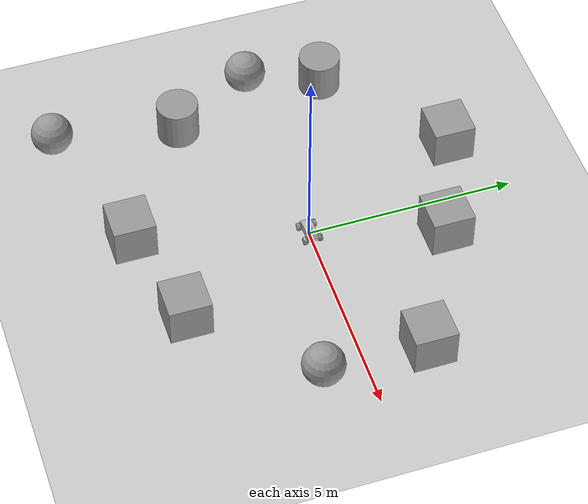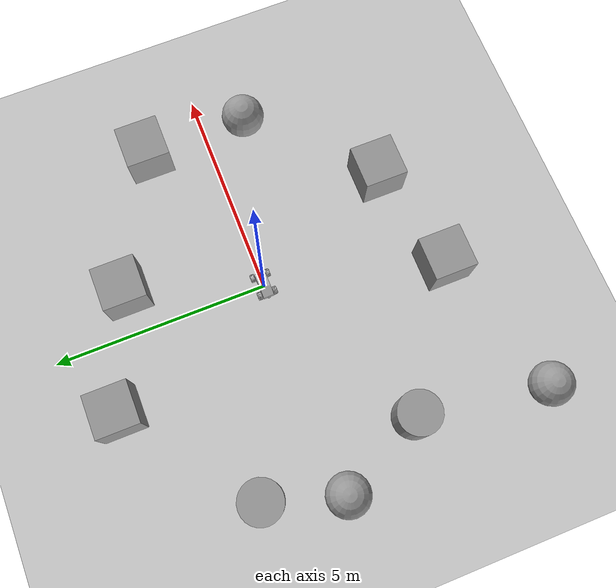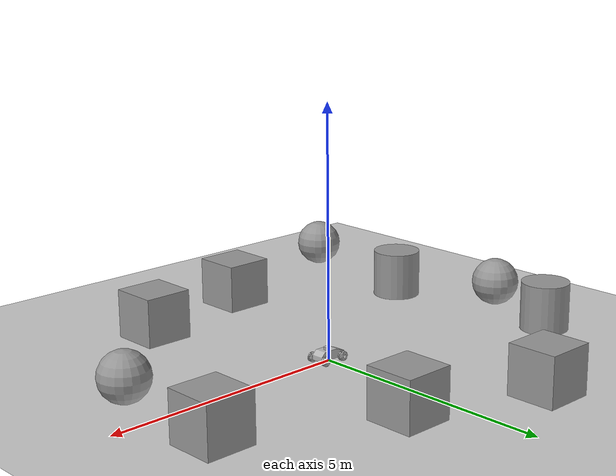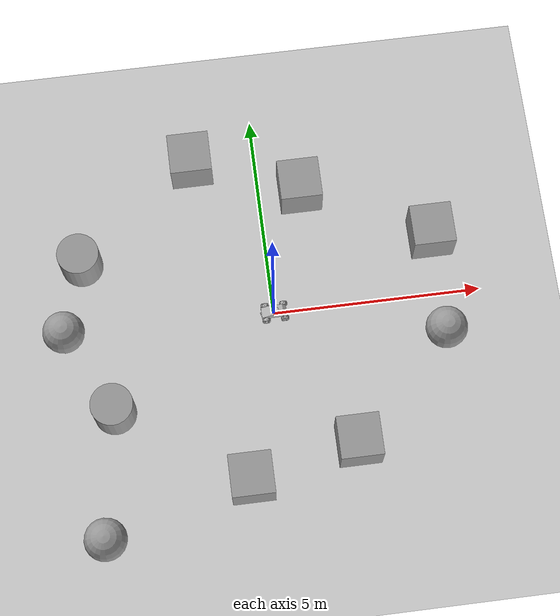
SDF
<sdf version="1.7">
 <world name="default">
  <light name="sun" type="directional">
   <pose>0 0 10 0 -0 0</pose>
   <diffuse>0.8 0.8 0.8 1</diffuse>
   <specular>0.2 0.2 0.2 1</specular>
   <attenuation>
    <range>1000</range>
    <constant>0.9</constant>
    <linear>0.01</linear>
    <quadratic>0.001</quadratic>
   </attenuation>
   <direction>-0.5 0.1 -0.9</direction>
   <spot><inner_angle>0</inner_angle><outer_angle>0</outer_angle><falloff>0</falloff></spot>
  </light>
  <model name="ground_plane">
   <static>1</static>
   <link name="link">
    <collision name="collision">
     <geometry><plane><normal>0 0 1</normal><size>100 100</size></plane></geometry>
     <surface>
      <contact><collide_bitmask>65535</collide_bitmask></contact>
      <friction><ode><mu>100</mu><mu2>50</mu2></ode></friction>
     </surface>
    </collision>
    <visual name="visual">
     <cast_shadows>0</cast_shadows>
     <geometry><plane><normal>0 0 1</normal><size>100 100</size></plane></geometry>
     <material>
      <script><uri>file://media/materials/scripts/gazebo.material</uri><name>Gazebo/Grey</name></script>
     </material>
    </visual>
   </link>
  </model>
  <gravity>0 0 -9.8</gravity>
  <magnetic_field>6e-06 2.3e-05 -4.2e-05</magnetic_field>
  <atmosphere type="adiabatic"/>
  <physics type="ode">
   <max_step_size>0.001</max_step_size>
   <real_time_factor>1</real_time_factor>
   <real_time_update_rate>1000</real_time_update_rate>
  </physics>
  <scene><ambient>0.4 0.4 0.4 1</ambient><background>0.7 0.7 0.7 1</background><shadows>1</shadows></scene>
  <audio><device>default</device></audio>
  <spherical_coordinates>
   <surface_model>EARTH_WGS84</surface_model>
   <latitude_deg>0</latitude_deg>
   <longitude_deg>0</longitude_deg>
   <elevation>0</elevation>
   <heading_deg>0</heading_deg>
  </spherical_coordinates>
  <model name="my_car">
   <link name="base_link">
    <inertial>
     <pose>0.005986 -0 0.085321 0 -0 0</pose>
     <mass>25.4221</mass>
     <inertia>
      <ixx>0.388088</ixx>
      <ixy>0.000810797</ixy>
      <ixz>-0.00813607</ixz>
      <iyy>1.45514</iyy>
      <iyz>-3.03419e-05</iyz>
      <izz>1.57857</izz>
     </inertia>
    </inertial>
    <collision name="base_link_fixed_joint_lump__chassis_link_collision">
     <geometry>
      <mesh>
       <scale>1 1 1</scale>
       <uri>file:///home/pacman/Documents/my_ros2_ws/install/gazebo_spawner_test/share/gazebo_spawner_test/meshes/chassis_link.STL</uri>
      </mesh>
     </geometry>
    </collision>
    <collision name="base_link_fixed_joint_lump__camera_link_collision_1">
     <pose>-0.3 0 0.05 0 -0 3.14</pose>
     <geometry><box><size>0.05 0.05 0.05</size></box></geometry>
    </collision>
    <collision name="base_link_fixed_joint_lump__lidar_link_collision_2">
     <pose>0.065294 0 0.18471 0 -0 0</pose>
     <geometry>
      <mesh>
       <scale>1 1 1</scale>
       <uri>file:///home/pacman/Documents/my_ros2_ws/install/gazebo_spawner_test/share/gazebo_spawner_test/meshes/lidar_link.STL</uri>
      </mesh>
     </geometry>
    </collision>
    <visual name="base_link_fixed_joint_lump__chassis_link_visual">
     <geometry>
      <mesh>
       <scale>1 1 1</scale>
       <uri>file:///home/pacman/Documents/my_ros2_ws/install/gazebo_spawner_test/share/gazebo_spawner_test/meshes/chassis_link.STL</uri>
      </mesh>
     </geometry>
    </visual>
    <visual name="base_link_fixed_joint_lump__camera_link_visual_1">
     <pose>-0.3 0 0.05 0 -0 3.14</pose>
     <geometry><box><size>0.05 0.05 0.05</size></box></geometry>
    </visual>
    <visual name="base_link_fixed_joint_lump__lidar_link_visual_2">
     <pose>0.065294 0 0.18471 0 -0 0</pose>
     <geometry>
      <mesh>
       <scale>1 1 1</scale>
       <uri>file:///home/pacman/Documents/my_ros2_ws/install/gazebo_spawner_test/share/gazebo_spawner_test/meshes/lidar_link.STL</uri>
      </mesh>
     </geometry>
    </visual>
    <sensor name="camera1" type="depth">
     <update_rate>30</update_rate>
     <visualize>1</visualize>
     <camera name="head">
      <horizontal_fov>1.39626</horizontal_fov>
      <image><width>800</width><height>800</height><format>R8G8B8</format></image>
      <clip><near>0.02</near><far>300</far></clip>
      <noise><type>gaussian</type><mean>0</mean><stddev>0.007</stddev></noise>
     </camera>
     <plugin name="depth_camera_controller" filename="libgazebo_ros_camera.so">
      <alwaysOn>1</alwaysOn>
      <updateRate>0.0</updateRate>
      <cameraName>rrbot/camera1</cameraName>
      <depthImageTopicName>image_raw</depthImageTopicName>
      <cameraInfoTopicName>camera_info</cameraInfoTopicName>
      <pointCloudTopicName>points</pointCloudTopicName>
      <frame_name>camera_virtual_link</frame_name>
      <hackBaseline>0.07</hackBaseline>
      <distortionK1>0.0</distortionK1>
      <distortionK2>0.0</distortionK2>
      <distortionK3>0.0</distortionK3>
      <distortionT1>0.0</distortionT1>
      <distortionT2>0.0</distortionT2>
     </plugin>
     <pose>-0.3 0 0.05 0 -0 3.14</pose>
    </sensor>
    <sensor name="laser" type="ray">
     <visualize>1</visualize>
     <update_rate>10</update_rate>
     <ray>
      <scan>
       <horizontal>
        <samples>360</samples>
        <min_angle>-3.14</min_angle>
        <max_angle>3.14</max_angle>
        <resolution>1</resolution>
       </horizontal>
       <vertical><samples>1</samples><min_angle>0</min_angle><max_angle>0</max_angle></vertical>
      </scan>
      <range><min>0.2</min><max>5</max></range>
     </ray>
     <plugin name="laser_controller" filename="libgazebo_ros_ray_sensor.so">
      <ros><argument>~/out:=scan</argument></ros>
      <output_type>sensor_msgs/LaserScan</output_type>
      <frame_name>lidar_link</frame_name>
     </plugin>
     <pose>0.065294 0 0.18471 0 -0 0</pose>
    </sensor>
   </link>
   <joint name="back_left_wheel_joint" type="revolute">
    <pose relative_to="base_link">0.25 -0.137 0.03 -1.5708 -0 -3.14159</pose>
    <parent>base_link</parent>
    <child>back_left_wheel</child>
    <axis>
     <xyz>0 0 1</xyz>
     <limit><lower>-1e+16</lower><upper>1e+16</upper></limit>
     <dynamics><spring_reference>0</spring_reference><spring_stiffness>0</spring_stiffness></dynamics>
    </axis>
   </joint>
   <link name="back_left_wheel">
    <pose relative_to="back_left_wheel_joint">0 0 0 0 -0 0</pose>
    <inertial>
     <pose>-0 0 0.045152 0 -0 0</pose>
     <mass>1.13679</mass>
     <inertia>
      <ixx>0.00404658</ixx>
      <ixy>-1.69136e-11</ixy>
      <ixz>1.58009e-09</ixz>
      <iyy>0.00404658</iyy>
      <iyz>-6.34676e-09</iyz>
      <izz>0.00594385</izz>
     </inertia>
    </inertial>
    <collision name="back_left_wheel_collision">
     <geometry>
      <mesh>
       <scale>1 1 1</scale>
       <uri>file:///home/pacman/Documents/my_ros2_ws/install/gazebo_spawner_test/share/gazebo_spawner_test/meshes/back_left_wheel.STL</uri>
      </mesh>
     </geometry>
    </collision>
    <visual name="back_left_wheel_visual">
     <geometry>
      <mesh>
       <scale>1 1 1</scale>
       <uri>file:///home/pacman/Documents/my_ros2_ws/install/gazebo_spawner_test/share/gazebo_spawner_test/meshes/back_left_wheel.STL</uri>
      </mesh>
     </geometry>
    </visual>
   </link>
   <joint name="back_right_wheel_joint" type="revolute">
    <pose relative_to="base_link">0.25 0.137 0.03 1.5708 -0 -3.14159</pose>
    <parent>base_link</parent>
    <child>back_right_wheel</child>
    <axis>
     <xyz>0 0 -1</xyz>
     <limit><lower>-1e+16</lower><upper>1e+16</upper></limit>
     <dynamics><spring_reference>0</spring_reference><spring_stiffness>0</spring_stiffness></dynamics>
    </axis>
   </joint>
   <link name="back_right_wheel">
    <pose relative_to="back_right_wheel_joint">0 0 0 0 -0 0</pose>
    <inertial>
     <pose>0 -0 0.045152 0 -0 0</pose>
     <mass>1.13679</mass>
     <inertia>
      <ixx>0.00404658</ixx>
      <ixy>2.07232e-10</ixy>
      <ixz>-6.04222e-09</ixz>
      <iyy>0.00404658</iyy>
      <iyz>1.29882e-09</iyz>
      <izz>0.00594385</izz>
     </inertia>
    </inertial>
    <collision name="back_right_wheel_collision">
     <geometry>
      <mesh>
       <scale>1 1 1</scale>
       <uri>file:///home/pacman/Documents/my_ros2_ws/install/gazebo_spawner_test/share/gazebo_spawner_test/meshes/back_right_wheel.STL</uri>
      </mesh>
     </geometry>
    </collision>
    <visual name="back_right_wheel_visual">
     <geometry>
      <mesh>
       <scale>1 1 1</scale>
       <uri>file:///home/pacman/Documents/my_ros2_ws/install/gazebo_spawner_test/share/gazebo_spawner_test/meshes/back_right_wheel.STL</uri>
      </mesh>
     </geometry>
    </visual>
   </link>
   <joint name="front_left_wheel_joint" type="revolute">
    <pose relative_to="base_link">-0.2 -0.13893 0.03 -1.5708 -0 -3.14159</pose>
    <parent>base_link</parent>
    <child>front_left_wheel</child>
    <axis>
     <xyz>0 0 1</xyz>
     <limit><lower>-1e+16</lower><upper>1e+16</upper></limit>
     <dynamics><spring_reference>0</spring_reference><spring_stiffness>0</spring_stiffness></dynamics>
    </axis>
   </joint>
   <link name="front_left_wheel">
    <pose relative_to="front_left_wheel_joint">0 0 0 0 -0 0</pose>
    <inertial>
     <pose>-0 0 0.045152 0 -0 0</pose>
     <mass>1.13679</mass>
     <inertia>
      <ixx>0.00404658</ixx>
      <ixy>1.03964e-10</ixy>
      <ixz>-2.30573e-09</ixz>
      <iyy>0.00404658</iyy>
      <iyz>-6.01974e-09</iyz>
      <izz>0.00594385</izz>
     </inertia>
    </inertial>
    <collision name="front_left_wheel_collision">
     <geometry>
      <mesh>
       <scale>1 1 1</scale>
       <uri>file:///home/pacman/Documents/my_ros2_ws/install/gazebo_spawner_test/share/gazebo_spawner_test/meshes/front_left_wheel.STL</uri>
      </mesh>
     </geometry>
    </collision>
    <visual name="front_left_wheel_visual">
     <geometry>
      <mesh>
       <scale>1 1 1</scale>
       <uri>file:///home/pacman/Documents/my_ros2_ws/install/gazebo_spawner_test/share/gazebo_spawner_test/meshes/front_left_wheel.STL</uri>
      </mesh>
     </geometry>
    </visual>
   </link>
   <joint name="front_right_wheel_joint" type="revolute">
    <pose relative_to="base_link">-0.2 0.137 0.03 1.5708 -0 -3.14159</pose>
    <parent>base_link</parent>
    <child>front_right_wheel</child>
    <axis>
     <xyz>0 0 -1</xyz>
     <limit><lower>-1e+16</lower><upper>1e+16</upper></limit>
     <dynamics><spring_reference>0</spring_reference><spring_stiffness>0</spring_stiffness></dynamics>
    </axis>
   </joint>
   <link name="front_right_wheel">
    <pose relative_to="front_right_wheel_joint">0 0 0 0 -0 0</pose>
    <inertial>
     <pose>0 0 0.045152 0 -0 0</pose>
     <mass>1.13679</mass>
     <inertia>
      <ixx>0.00404658</ixx>
      <ixy>-1.75234e-10</ixy>
      <ixz>-8.11053e-10</ixz>
      <iyy>0.00404658</iyy>
      <iyz>6.74082e-09</iyz>
      <izz>0.00594385</izz>
     </inertia>
    </inertial>
    <collision name="front_right_wheel_collision">
     <geometry>
      <mesh>
       <scale>1 1 1</scale>
       <uri>file:///home/pacman/Documents/my_ros2_ws/install/gazebo_spawner_test/share/gazebo_spawner_test/meshes/front_right_wheel.STL</uri>
      </mesh>
     </geometry>
    </collision>
    <visual name="front_right_wheel_visual">
     <geometry>
      <mesh>
       <scale>1 1 1</scale>
       <uri>file:///home/pacman/Documents/my_ros2_ws/install/gazebo_spawner_test/share/gazebo_spawner_test/meshes/front_right_wheel.STL</uri>
      </mesh>
     </geometry>
    </visual>
   </link>
   <static>0</static>
   <plugin name="four_wheeled_robot_diff_drive" filename="libgazebo_ros_diff_drive.so">
    <num_wheel_pairs>2</num_wheel_pairs>
    <left_joint>front_left_wheel_joint</left_joint>
    <right_joint>front_right_wheel_joint</right_joint>
    <left_joint>back_left_wheel_joint</left_joint>
    <right_joint>back_right_wheel_joint</right_joint>
    <wheel_separation>0.27</wheel_separation>
    <wheel_separation>0.27</wheel_separation>
    <wheel_diameter>0.2</wheel_diameter>
    <wheel_diameter>0.2</wheel_diameter>
    <max_wheel_torque>2000</max_wheel_torque>
    <max_wheel_acceleration>1.0</max_wheel_acceleration>
    <publish_odom>1</publish_odom>
    <publish_odom_tf>1</publish_odom_tf>
    <publish_wheel_tf>1</publish_wheel_tf>
    <odometry_frame>odom</odometry_frame>
    <robot_base_frame>base_link</robot_base_frame>
   </plugin>
   <pose>0.001536 -0.001955 0.064953 0 -1e-06 0.015835</pose>
  </model>
  <model name="unit_cylinder">
   <pose>-4.46072 1.74414 0.5 -0 -0 -0</pose>
   <link name="link">
    <inertial>
     <mass>1</mass>
     <inertia><ixx>0.145833</ixx><ixy>0</ixy><ixz>0</ixz><iyy>0.145833</iyy><iyz>0</iyz><izz>0.125</izz></inertia>
    </inertial>
    <collision name="collision">
     <geometry><cylinder><radius>0.5</radius><length>1</length></cylinder></geometry>
    </collision>
    <visual name="visual">
     <geometry><cylinder><radius>0.5</radius><length>1</length></cylinder></geometry>
     <material>
      <script><name>Gazebo/Grey</name><uri>file://media/materials/scripts/gazebo.material</uri></script>
     </material>
    </visual>
   </link>
  </model>
  <model name="unit_sphere">
   <pose>-5 0 0.5 0 -0 0</pose>
   <link name="link">
    <inertial>
     <mass>1</mass>
     <inertia><ixx>0.1</ixx><ixy>0</ixy><ixz>0</ixz><iyy>0.1</iyy><iyz>0</iyz><izz>0.1</izz></inertia>
    </inertial>
    <collision name="collision"><geometry><sphere><radius>0.5</radius></sphere></geometry></collision>
    <visual name="visual">
     <geometry><sphere><radius>0.5</radius></sphere></geometry>
     <material>
      <script><name>Gazebo/Grey</name><uri>file://media/materials/scripts/gazebo.material</uri></script>
     </material>
    </visual>
   </link>
  </model>
  <model name="unit_box">
   <pose>-1.56612 4 0.499995 -1e-05 -0 -0</pose>
   <link name="link">
    <inertial>
     <mass>1</mass>
     <inertia>
      <ixx>0.166667</ixx>
      <ixy>0</ixy>
      <ixz>0</ixz>
      <iyy>0.166667</iyy>
      <iyz>0</iyz>
      <izz>0.166667</izz>
     </inertia>
    </inertial>
    <collision name="collision"><geometry><box><size>1 1 1</size></box></geometry></collision>
    <visual name="visual">
     <geometry><box><size>1 1 1</size></box></geometry>
     <material>
      <script><name>Gazebo/Grey</name><uri>file://media/materials/scripts/gazebo.material</uri></script>
     </material>
    </visual>
   </link>
  </model>
  <model name="unit_sphere_0">
   <pose>-4.45444 -5 0.5 0 -0 0</pose>
   <link name="link">
    <inertial>
     <mass>1</mass>
     <inertia><ixx>0.1</ixx><ixy>0</ixy><ixz>0</ixz><iyy>0.1</iyy><iyz>0</iyz><izz>0.1</izz></inertia>
    </inertial>
    <collision name="collision"><geometry><sphere><radius>0.5</radius></sphere></geometry></collision>
    <visual name="visual">
     <geometry><sphere><radius>0.5</radius></sphere></geometry>
     <material>
      <script><name>Gazebo/Grey</name><uri>file://media/materials/scripts/gazebo.material</uri></script>
     </material>
    </visual>
   </link>
  </model>
  <model name="unit_cylinder_0">
   <pose>-4 -2 0.499998 4e-06 -4e-06 0</pose>
   <link name="link">
    <inertial>
     <mass>1</mass>
     <inertia><ixx>0.145833</ixx><ixy>0</ixy><ixz>0</ixz><iyy>0.145833</iyy><iyz>0</iyz><izz>0.125</izz></inertia>
    </inertial>
    <collision name="collision">
     <geometry><cylinder><radius>0.5</radius><length>1</length></cylinder></geometry>
    </collision>
    <visual name="visual">
     <geometry><cylinder><radius>0.5</radius><length>1</length></cylinder></geometry>
     <material>
      <script><name>Gazebo/Grey</name><uri>file://media/materials/scripts/gazebo.material</uri></script>
     </material>
    </visual>
   </link>
  </model>
  <model name="unit_box_0">
   <pose>-0.999995 -4 0.499995 0 1e-05 0</pose>
   <link name="link">
    <inertial>
     <mass>1</mass>
     <inertia>
      <ixx>0.166667</ixx>
      <ixy>0</ixy>
      <ixz>0</ixz>
      <iyy>0.166667</iyy>
      <iyz>0</iyz>
      <izz>0.166667</izz>
     </inertia>
    </inertial>
    <collision name="collision"><geometry><box><size>1 1 1</size></box></geometry></collision>
    <visual name="visual">
     <geometry><box><size>1 1 1</size></box></geometry>
     <material>
      <script><name>Gazebo/Grey</name><uri>file://media/materials/scripts/gazebo.material</uri></script>
     </material>
    </visual>
   </link>
  </model>
  <model name="unit_box_1">
   <pose>1.56258 -3.43357 0.499995 -1e-05 -0 -0</pose>
   <link name="link">
    <inertial>
     <mass>1</mass>
     <inertia>
      <ixx>0.166667</ixx>
      <ixy>0</ixy>
      <ixz>0</ixz>
      <iyy>0.166667</iyy>
      <iyz>0</iyz>
      <izz>0.166667</izz>
     </inertia>
    </inertial>
    <collision name="collision"><geometry><box><size>1 1 1</size></box></geometry></collision>
    <visual name="visual">
     <geometry><box><size>1 1 1</size></box></geometry>
     <material>
      <script><name>Gazebo/Grey</name><uri>file://media/materials/scripts/gazebo.material</uri></script>
     </material>
    </visual>
   </link>
  </model>
  <model name="unit_sphere_1">
   <pose>4 -1 0.5 0 -0 0</pose>
   <link name="link">
    <inertial>
     <mass>1</mass>
     <inertia><ixx>0.1</ixx><ixy>0</ixy><ixz>0</ixz><iyy>0.1</iyy><iyz>0</iyz><izz>0.1</izz></inertia>
    </inertial>
    <collision name="collision"><geometry><sphere><radius>0.5</radius></sphere></geometry></collision>
    <visual name="visual">
     <geometry><sphere><radius>0.5</radius></sphere></geometry>
     <material>
      <script><name>Gazebo/Grey</name><uri>file://media/materials/scripts/gazebo.material</uri></script>
     </material>
    </visual>
   </link>
  </model>
  <model name="unit_box_2">
   <pose>1 3 0.499995 -1e-05 -0 0</pose>
   <link name="link">
    <inertial>
     <mass>1</mass>
     <inertia>
      <ixx>0.166667</ixx>
      <ixy>0</ixy>
      <ixz>0</ixz>
      <iyy>0.166667</iyy>
      <iyz>0</iyz>
      <izz>0.166667</izz>
     </inertia>
    </inertial>
    <collision name="collision"><geometry><box><size>1 1 1</size></box></geometry></collision>
    <visual name="visual">
     <geometry><box><size>1 1 1</size></box></geometry>
     <material>
      <script><name>Gazebo/Grey</name><uri>file://media/materials/scripts/gazebo.material</uri></script>
     </material>
    </visual>
   </link>
  </model>
  <model name="unit_box_3">
   <pose>4 1.45056 0.5 0 -0 0</pose>
   <link name="link">
    <inertial>
     <mass>1</mass>
     <inertia>
      <ixx>0.166667</ixx>
      <ixy>0</ixy>
      <ixz>0</ixz>
      <iyy>0.166667</iyy>
      <iyz>0</iyz>
      <izz>0.166667</izz>
     </inertia>
    </inertial>
    <collision name="collision"><geometry><box><size>1 1 1</size></box></geometry></collision>
    <visual name="visual">
     <geometry><box><size>1 1 1</size></box></geometry>
     <material>
      <script><name>Gazebo/Grey</name><uri>file://media/materials/scripts/gazebo.material</uri></script>
     </material>
    </visual>
   </link>
  </model>
 </world>
</sdf>
